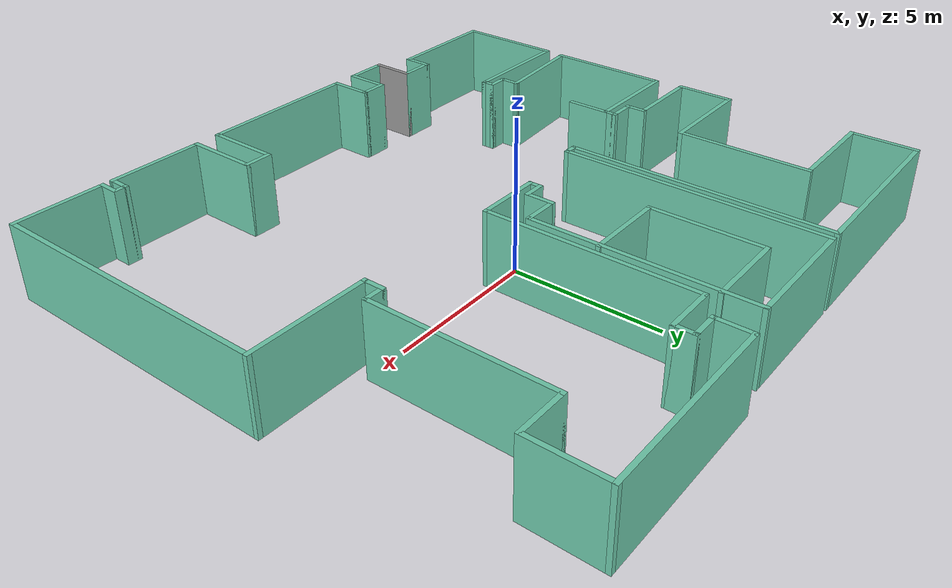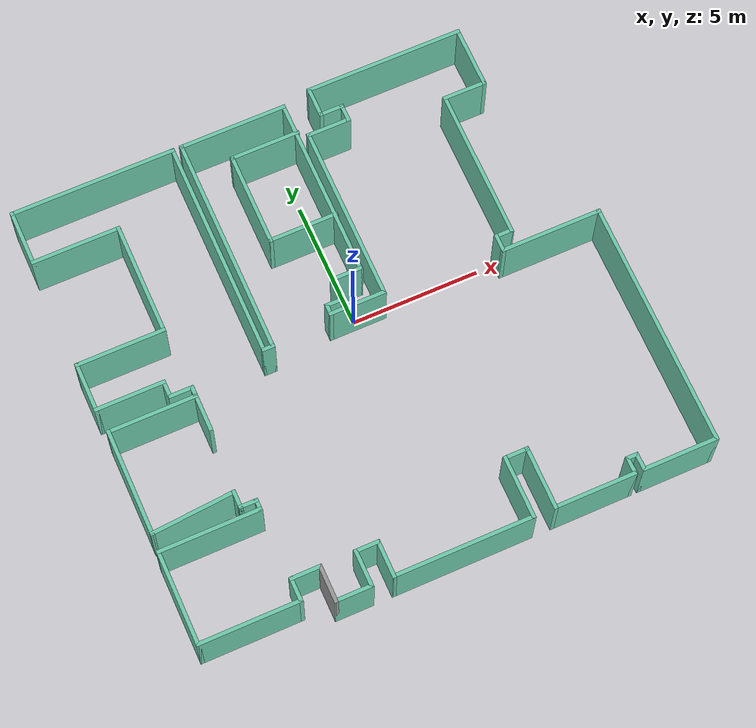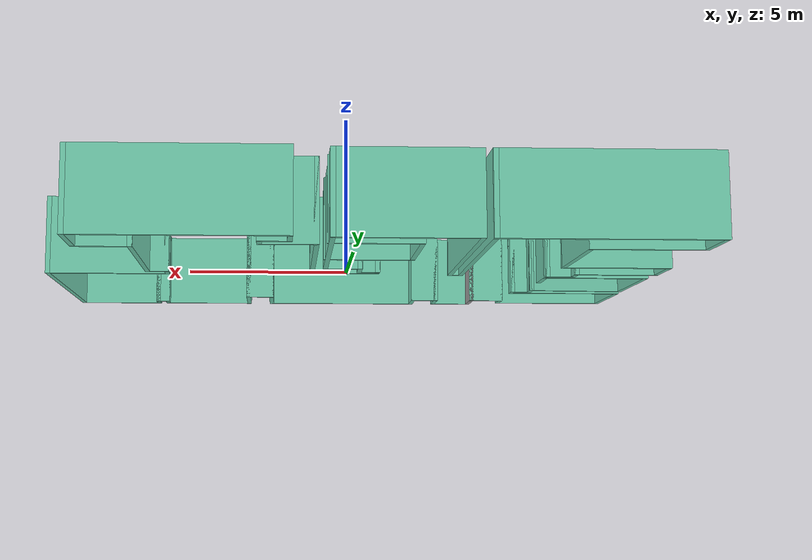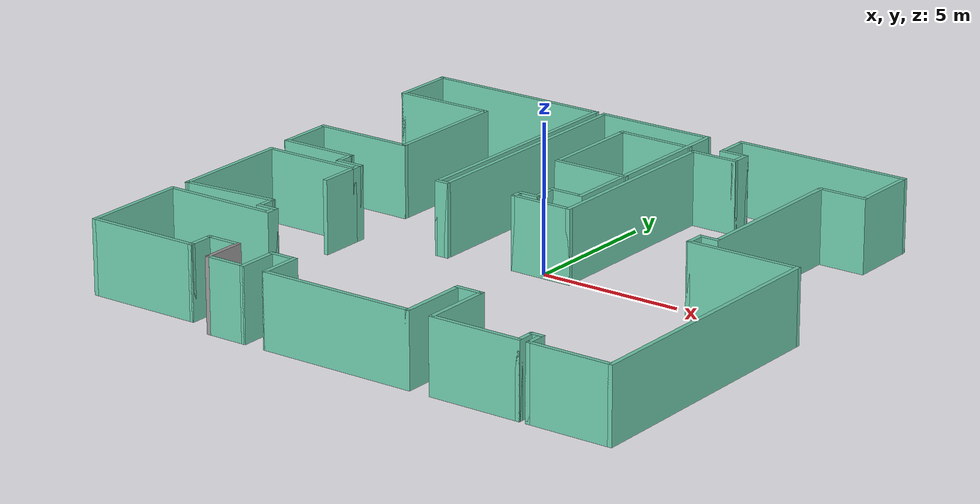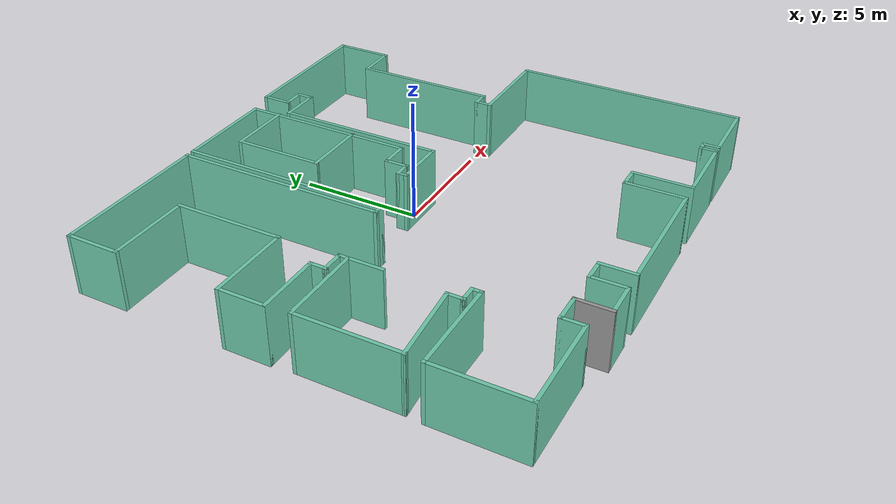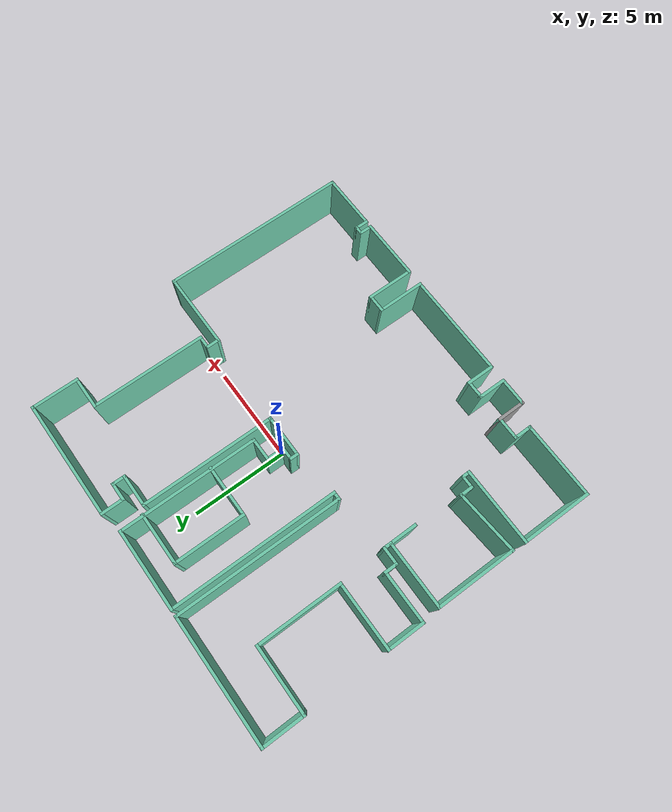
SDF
<?xml version='1.0'?>
<sdf version='1.6'>
  <model name='map_116'>
    <pose frame=''>-0.246075 -0.881339 0 0 -0 0</pose>
    <link name='Wall_102'>
      <collision name='Wall_102_Collision'>
        <geometry>
          <box>
            <size>3.5 0.15 2.5</size>
          </box>
        </geometry>
        <pose frame=''>0 0 1.25 0 -0 0</pose>
      </collision>
      <visual name='Wall_102_Visual'>
        <pose frame=''>0 0 1.25 0 -0 0</pose>
        <geometry>
          <box>
            <size>3.5 0.15 2.5</size>
          </box>
        </geometry>
        <material>
          <script>
            <uri>file://media/materials/scripts/gazebo.material</uri>
            <name>Gazebo/Grey</name>
          </script>
          <ambient>0.435294 0.796078 0.67451 1</ambient>
        </material>
        <meta>
          <layer>0</layer>
        </meta>
      </visual>
      <pose frame=''>-8.075 -0.3 0 0 -0 3.14159</pose>
    </link>
    <link name='Wall_104'>
      <collision name='Wall_104_Collision'>
        <geometry>
          <box>
            <size>4.25 0.15 2.5</size>
          </box>
        </geometry>
        <pose frame=''>0 0 1.25 0 -0 0</pose>
      </collision>
      <visual name='Wall_104_Visual'>
        <pose frame=''>0 0 1.25 0 -0 0</pose>
        <geometry>
          <box>
            <size>4.25 0.15 2.5</size>
          </box>
        </geometry>
        <material>
          <script>
            <uri>file://media/materials/scripts/gazebo.material</uri>
            <name>Gazebo/Grey</name>
          </script>
          <ambient>0.435294 0.796078 0.67451 1</ambient>
        </material>
        <meta>
          <layer>0</layer>
        </meta>
      </visual>
      <pose frame=''>-9.75 -2.35 0 0 -0 -1.5708</pose>
    </link>
    <link name='Wall_105'>
      <collision name='Wall_105_Collision'>
        <geometry>
          <box>
            <size>3.35975 0.15 2.5</size>
          </box>
        </geometry>
        <pose frame=''>0 0 1.25 0 -0 0</pose>
      </collision>
      <visual name='Wall_105_Visual'>
        <pose frame=''>0 0 1.25 0 -0 0</pose>
        <geometry>
          <box>
            <size>3.35975 0.15 2.5</size>
          </box>
        </geometry>
        <material>
          <script>
            <uri>file://media/materials/scripts/gazebo.material</uri>
            <name>Gazebo/Grey</name>
          </script>
          <ambient>0.435294 0.796078 0.67451 1</ambient>
        </material>
        <meta>
          <layer>0</layer>
        </meta>
      </visual>
      <pose frame=''>-8.15 -4.275 0 0 -0 0.077967</pose>
    </link>
    <link name='Wall_107'>
      <collision name='Wall_107_Collision'>
        <geometry>
          <box>
            <size>1.5 0.15 2.5</size>
          </box>
        </geometry>
        <pose frame=''>0 0 1.25 0 -0 0</pose>
      </collision>
      <visual name='Wall_107_Visual'>
        <pose frame=''>0 0 1.25 0 -0 0</pose>
        <geometry>
          <box>
            <size>1.5 0.15 2.5</size>
          </box>
        </geometry>
        <material>
          <script>
            <uri>file://media/materials/scripts/gazebo.material</uri>
            <name>Gazebo/Grey</name>
          </script>
          <ambient>0.435294 0.796078 0.67451 1</ambient>
        </material>
        <meta>
          <layer>0</layer>
        </meta>
      </visual>
      <pose frame=''>-6.4 -0.975 0 0 -0 -1.5708</pose>
    </link>
    <link name='Wall_109'>
      <collision name='Wall_109_Collision'>
        <geometry>
          <box>
            <size>2.75 0.15 2.5</size>
          </box>
        </geometry>
        <pose frame=''>0 0 1.25 0 -0 0</pose>
      </collision>
      <visual name='Wall_109_Visual'>
        <pose frame=''>0 0 1.25 0 -0 0</pose>
        <geometry>
          <box>
            <size>2.75 0.15 2.5</size>
          </box>
        </geometry>
        <material>
          <script>
            <uri>file://media/materials/scripts/gazebo.material</uri>
            <name>Gazebo/Grey</name>
          </script>
          <ambient>0.435294 0.796078 0.67451 1</ambient>
        </material>
        <meta>
          <layer>0</layer>
        </meta>
      </visual>
      <pose frame=''>-0.30531 7.77428 0 0 -0 3.14159</pose>
    </link>
    <link name='Wall_110'>
      <collision name='Wall_110_Collision'>
        <geometry>
          <box>
            <size>3.75 0.15 2.5</size>
          </box>
        </geometry>
        <pose frame=''>0 0 1.25 0 -0 0</pose>
      </collision>
      <visual name='Wall_110_Visual'>
        <pose frame=''>0 0 1.25 0 -0 0</pose>
        <geometry>
          <box>
            <size>3.75 0.15 2.5</size>
          </box>
        </geometry>
        <material>
          <script>
            <uri>file://media/materials/scripts/gazebo.material</uri>
            <name>Gazebo/Grey</name>
          </script>
          <ambient>0.435294 0.796078 0.67451 1</ambient>
        </material>
        <meta>
          <layer>0</layer>
        </meta>
      </visual>
      <pose frame=''>-1.60531 5.97428 0 0 -0 -1.5708</pose>
    </link>
    <link name='Wall_113'>
      <collision name='Wall_113_Collision'>
        <geometry>
          <box>
            <size>2.75 0.15 2.5</size>
          </box>
        </geometry>
        <pose frame=''>0 0 1.25 0 -0 0</pose>
      </collision>
      <visual name='Wall_113_Visual'>
        <pose frame=''>0 0 1.25 0 -0 0</pose>
        <geometry>
          <box>
            <size>2.75 0.15 2.5</size>
          </box>
        </geometry>
        <material>
          <script>
            <uri>file://media/materials/scripts/gazebo.material</uri>
            <name>Gazebo/Grey</name>
          </script>
          <ambient>0.435294 0.796078 0.67451 1</ambient>
        </material>
        <meta>
          <layer>0</layer>
        </meta>
      </visual>
      <pose frame=''>-0.30531 4.17428 0 0 -0 0</pose>
    </link>
    <link name='Wall_25'>
      <collision name='Wall_25_Collision'>
        <geometry>
          <box>
            <size>0.75 0.15 2.5</size>
          </box>
        </geometry>
        <pose frame=''>0 0 1.25 0 -0 0</pose>
      </collision>
      <visual name='Wall_25_Visual'>
        <pose frame=''>0 0 1.25 0 -0 0</pose>
        <geometry>
          <box>
            <size>0.75 0.15 2.5</size>
          </box>
        </geometry>
        <material>
          <script>
            <uri>file://media/materials/scripts/gazebo.material</uri>
            <name>Gazebo/Grey</name>
          </script>
          <ambient>0.435294 0.796078 0.67451 1</ambient>
        </material>
        <meta>
          <layer>0</layer>
        </meta>
      </visual>
      <pose frame=''>-6.55 -4.45 0 0 -0 -1.5708</pose>
    </link>
    <link name='Wall_26'>
      <collision name='Wall_26_Collision'>
        <geometry>
          <box>
            <size>0.75 0.15 2.5</size>
          </box>
        </geometry>
        <pose frame=''>0 0 1.25 0 -0 0</pose>
      </collision>
      <visual name='Wall_26_Visual'>
        <pose frame=''>0 0 1.25 0 -0 0</pose>
        <geometry>
          <box>
            <size>0.75 0.15 2.5</size>
          </box>
        </geometry>
        <material>
          <script>
            <uri>file://media/materials/scripts/gazebo.material</uri>
            <name>Gazebo/Grey</name>
          </script>
          <ambient>0.435294 0.796078 0.67451 1</ambient>
        </material>
        <meta>
          <layer>0</layer>
        </meta>
      </visual>
      <pose frame=''>-6.25 -4.75 0 0 -0 0</pose>
    </link>
    <link name='Wall_27'>
      <collision name='Wall_27_Collision'>
        <geometry>
          <box>
            <size>0.5 0.15 2.5</size>
          </box>
        </geometry>
        <pose frame=''>0 0 1.25 0 -0 0</pose>
      </collision>
      <visual name='Wall_27_Visual'>
        <pose frame=''>0 0 1.25 0 -0 0</pose>
        <geometry>
          <box>
            <size>0.5 0.15 2.5</size>
          </box>
        </geometry>
        <material>
          <script>
            <uri>file://media/materials/scripts/gazebo.material</uri>
            <name>Gazebo/Grey</name>
          </script>
          <ambient>0.435294 0.796078 0.67451 1</ambient>
        </material>
        <meta>
          <layer>0</layer>
        </meta>
      </visual>
      <pose frame=''>-5.95 -4.925 0 0 -0 -1.5708</pose>
    </link>
    <link name='Wall_28'>
      <collision name='Wall_28_Collision'>
        <geometry>
          <box>
            <size>4 0.15 2.5</size>
          </box>
        </geometry>
        <pose frame=''>0 0 1.25 0 -0 0</pose>
      </collision>
      <visual name='Wall_28_Visual'>
        <pose frame=''>0 0 1.25 0 -0 0</pose>
        <geometry>
          <box>
            <size>4 0.15 2.5</size>
          </box>
        </geometry>
        <material>
          <script>
            <uri>file://media/materials/scripts/gazebo.material</uri>
            <name>Gazebo/Grey</name>
          </script>
          <ambient>0.435294 0.796078 0.67451 1</ambient>
        </material>
        <meta>
          <layer>0</layer>
        </meta>
      </visual>
      <pose frame=''>-7.875 -5.1 0 0 -0 3.14159</pose>
    </link>
    <link name='Wall_29'>
      <collision name='Wall_29_Collision'>
        <geometry>
          <box>
            <size>3.75 0.15 2.5</size>
          </box>
        </geometry>
        <pose frame=''>0 0 1.25 0 -0 0</pose>
      </collision>
      <visual name='Wall_29_Visual'>
        <pose frame=''>0 0 1.25 0 -0 0</pose>
        <geometry>
          <box>
            <size>3.75 0.15 2.5</size>
          </box>
        </geometry>
        <material>
          <script>
            <uri>file://media/materials/scripts/gazebo.material</uri>
            <name>Gazebo/Grey</name>
          </script>
          <ambient>0.435294 0.796078 0.67451 1</ambient>
        </material>
        <meta>
          <layer>0</layer>
        </meta>
      </visual>
      <pose frame=''>-9.8 -6.9 0 0 -0 -1.5708</pose>
    </link>
    <link name='Wall_30'>
      <collision name='Wall_30_Collision'>
        <geometry>
          <box>
            <size>4 0.15 2.5</size>
          </box>
        </geometry>
        <pose frame=''>0 0 1.25 0 -0 0</pose>
      </collision>
      <visual name='Wall_30_Visual'>
        <pose frame=''>0 0 1.25 0 -0 0</pose>
        <geometry>
          <box>
            <size>4 0.15 2.5</size>
          </box>
        </geometry>
        <material>
          <script>
            <uri>file://media/materials/scripts/gazebo.material</uri>
            <name>Gazebo/Grey</name>
          </script>
          <ambient>0.435294 0.796078 0.67451 1</ambient>
        </material>
        <meta>
          <layer>0</layer>
        </meta>
      </visual>
      <pose frame=''>-7.875 -8.7 0 0 -0 0</pose>
    </link>
    <link name='Wall_31'>
      <collision name='Wall_31_Collision'>
        <geometry>
          <box>
            <size>1 0.15 2.5</size>
          </box>
        </geometry>
        <pose frame=''>0 0 1.25 0 -0 0</pose>
      </collision>
      <visual name='Wall_31_Visual'>
        <pose frame=''>0 0 1.25 0 -0 0</pose>
        <geometry>
          <box>
            <size>1 0.15 2.5</size>
          </box>
        </geometry>
        <material>
          <script>
            <uri>file://media/materials/scripts/gazebo.material</uri>
            <name>Gazebo/Grey</name>
          </script>
          <ambient>0.435294 0.796078 0.67451 1</ambient>
        </material>
        <meta>
          <layer>0</layer>
        </meta>
      </visual>
      <pose frame=''>-5.95 -8.275 0 0 -0 1.5708</pose>
    </link>
    <link name='Wall_32'>
      <collision name='Wall_32_Collision'>
        <geometry>
          <box>
            <size>1.25 0.15 2.5</size>
          </box>
        </geometry>
        <pose frame=''>0 0 1.25 0 -0 0</pose>
      </collision>
      <visual name='Wall_32_Visual'>
        <pose frame=''>0 0 1.25 0 -0 0</pose>
        <geometry>
          <box>
            <size>1.25 0.15 2.5</size>
          </box>
        </geometry>
        <material>
          <script>
            <uri>file://media/materials/scripts/gazebo.material</uri>
            <name>Gazebo/Grey</name>
          </script>
          <ambient>0.435294 0.796078 0.67451 1</ambient>
        </material>
        <meta>
          <layer>0</layer>
        </meta>
      </visual>
      <pose frame=''>-5.4 -7.85 0 0 -0 0</pose>
    </link>
    <link name='Wall_33'>
      <collision name='Wall_33_Collision'>
        <geometry>
          <box>
            <size>1.5 0.15 2.5</size>
          </box>
        </geometry>
        <pose frame=''>0 0 1.25 0 -0 0</pose>
      </collision>
      <visual name='Wall_33_Visual'>
        <pose frame=''>0 0 1.25 0 -0 0</pose>
        <geometry>
          <box>
            <size>1.5 0.15 2.5</size>
          </box>
        </geometry>
        <material>
          <script>
            <uri>file://media/materials/scripts/gazebo.material</uri>
            <name>Gazebo/Grey</name>
          </script>
          <ambient>1 1 1 1</ambient>
        </material>
        <meta>
          <layer>0</layer>
        </meta>
      </visual>
      <pose frame=''>-4.85 -8.525 0 0 -0 -1.5708</pose>
    </link>
    <link name='Wall_34'>
      <collision name='Wall_34_Collision'>
        <geometry>
          <box>
            <size>1.5 0.15 2.5</size>
          </box>
        </geometry>
        <pose frame=''>0 0 1.25 0 -0 0</pose>
      </collision>
      <visual name='Wall_34_Visual'>
        <pose frame=''>0 0 1.25 0 -0 0</pose>
        <geometry>
          <box>
            <size>1.5 0.15 2.5</size>
          </box>
        </geometry>
        <material>
          <script>
            <uri>file://media/materials/scripts/gazebo.material</uri>
            <name>Gazebo/Grey</name>
          </script>
          <ambient>0.435294 0.796078 0.67451 1</ambient>
        </material>
        <meta>
          <layer>0</layer>
        </meta>
      </visual>
      <pose frame=''>-4.175 -9.2 0 0 -0 0</pose>
    </link>
    <link name='Wall_35'>
      <collision name='Wall_35_Collision'>
        <geometry>
          <box>
            <size>1.5 0.15 2.5</size>
          </box>
        </geometry>
        <pose frame=''>0 0 1.25 0 -0 0</pose>
      </collision>
      <visual name='Wall_35_Visual'>
        <pose frame=''>0 0 1.25 0 -0 0</pose>
        <geometry>
          <box>
            <size>1.5 0.15 2.5</size>
          </box>
        </geometry>
        <material>
          <script>
            <uri>file://media/materials/scripts/gazebo.material</uri>
            <name>Gazebo/Grey</name>
          </script>
          <ambient>0.435294 0.796078 0.67451 1</ambient>
        </material>
        <meta>
          <layer>0</layer>
        </meta>
      </visual>
      <pose frame=''>-3.5 -8.525 0 0 -0 1.5708</pose>
    </link>
    <link name='Wall_36'>
      <collision name='Wall_36_Collision'>
        <geometry>
          <box>
            <size>1 0.15 2.5</size>
          </box>
        </geometry>
        <pose frame=''>0 0 1.25 0 -0 0</pose>
      </collision>
      <visual name='Wall_36_Visual'>
        <pose frame=''>0 0 1.25 0 -0 0</pose>
        <geometry>
          <box>
            <size>1 0.15 2.5</size>
          </box>
        </geometry>
        <material>
          <script>
            <uri>file://media/materials/scripts/gazebo.material</uri>
            <name>Gazebo/Grey</name>
          </script>
          <ambient>0.435294 0.796078 0.67451 1</ambient>
        </material>
        <meta>
          <layer>0</layer>
        </meta>
      </visual>
      <pose frame=''>-3.075 -7.85 0 0 -0 0</pose>
    </link>
    <link name='Wall_37'>
      <collision name='Wall_37_Collision'>
        <geometry>
          <box>
            <size>1.5 0.15 2.5</size>
          </box>
        </geometry>
        <pose frame=''>0 0 1.25 0 -0 0</pose>
      </collision>
      <visual name='Wall_37_Visual'>
        <pose frame=''>0 0 1.25 0 -0 0</pose>
        <geometry>
          <box>
            <size>1.5 0.15 2.5</size>
          </box>
        </geometry>
        <material>
          <script>
            <uri>file://media/materials/scripts/gazebo.material</uri>
            <name>Gazebo/Grey</name>
          </script>
          <ambient>0.435294 0.796078 0.67451 1</ambient>
        </material>
        <meta>
          <layer>0</layer>
        </meta>
      </visual>
      <pose frame=''>-2.65 -8.525 0 0 -0 -1.5708</pose>
    </link>
    <link name='Wall_38'>
      <collision name='Wall_38_Collision'>
        <geometry>
          <box>
            <size>5.5 0.15 2.5</size>
          </box>
        </geometry>
        <pose frame=''>0 0 1.25 0 -0 0</pose>
      </collision>
      <visual name='Wall_38_Visual'>
        <pose frame=''>0 0 1.25 0 -0 0</pose>
        <geometry>
          <box>
            <size>5.5 0.15 2.5</size>
          </box>
        </geometry>
        <material>
          <script>
            <uri>file://media/materials/scripts/gazebo.material</uri>
            <name>Gazebo/Grey</name>
          </script>
          <ambient>0.435294 0.796078 0.67451 1</ambient>
        </material>
        <meta>
          <layer>0</layer>
        </meta>
      </visual>
      <pose frame=''>0.025 -9.2 0 0 -0 0</pose>
    </link>
    <link name='Wall_39'>
      <collision name='Wall_39_Collision'>
        <geometry>
          <box>
            <size>2.5 0.15 2.5</size>
          </box>
        </geometry>
        <pose frame=''>0 0 1.25 0 -0 0</pose>
      </collision>
      <visual name='Wall_39_Visual'>
        <pose frame=''>0 0 1.25 0 -0 0</pose>
        <geometry>
          <box>
            <size>2.5 0.15 2.5</size>
          </box>
        </geometry>
        <material>
          <script>
            <uri>file://media/materials/scripts/gazebo.material</uri>
            <name>Gazebo/Grey</name>
          </script>
          <ambient>0.435294 0.796078 0.67451 1</ambient>
        </material>
        <meta>
          <layer>0</layer>
        </meta>
      </visual>
      <pose frame=''>2.7 -8.025 0 0 -0 1.5708</pose>
    </link>
    <link name='Wall_40'>
      <collision name='Wall_40_Collision'>
        <geometry>
          <box>
            <size>1 0.15 2.5</size>
          </box>
        </geometry>
        <pose frame=''>0 0 1.25 0 -0 0</pose>
      </collision>
      <visual name='Wall_40_Visual'>
        <pose frame=''>0 0 1.25 0 -0 0</pose>
        <geometry>
          <box>
            <size>1 0.15 2.5</size>
          </box>
        </geometry>
        <material>
          <script>
            <uri>file://media/materials/scripts/gazebo.material</uri>
            <name>Gazebo/Grey</name>
          </script>
          <ambient>0.435294 0.796078 0.67451 1</ambient>
        </material>
        <meta>
          <layer>0</layer>
        </meta>
      </visual>
      <pose frame=''>3.125 -6.85 0 0 -0 0</pose>
    </link>
    <link name='Wall_41'>
      <collision name='Wall_41_Collision'>
        <geometry>
          <box>
            <size>2.5 0.15 2.5</size>
          </box>
        </geometry>
        <pose frame=''>0 0 1.25 0 -0 0</pose>
      </collision>
      <visual name='Wall_41_Visual'>
        <pose frame=''>0 0 1.25 0 -0 0</pose>
        <geometry>
          <box>
            <size>2.5 0.15 2.5</size>
          </box>
        </geometry>
        <material>
          <script>
            <uri>file://media/materials/scripts/gazebo.material</uri>
            <name>Gazebo/Grey</name>
          </script>
          <ambient>0.435294 0.796078 0.67451 1</ambient>
        </material>
        <meta>
          <layer>0</layer>
        </meta>
      </visual>
      <pose frame=''>3.55 -8.025 0 0 -0 -1.5708</pose>
    </link>
    <link name='Wall_42'>
      <collision name='Wall_42_Collision'>
        <geometry>
          <box>
            <size>3.25 0.15 2.5</size>
          </box>
        </geometry>
        <pose frame=''>0 0 1.25 0 -0 0</pose>
      </collision>
      <visual name='Wall_42_Visual'>
        <pose frame=''>0 0 1.25 0 -0 0</pose>
        <geometry>
          <box>
            <size>3.25 0.15 2.5</size>
          </box>
        </geometry>
        <material>
          <script>
            <uri>file://media/materials/scripts/gazebo.material</uri>
            <name>Gazebo/Grey</name>
          </script>
          <ambient>0.435294 0.796078 0.67451 1</ambient>
        </material>
        <meta>
          <layer>0</layer>
        </meta>
      </visual>
      <pose frame=''>5.1 -9.2 0 0 -0 0</pose>
    </link>
    <link name='Wall_43'>
      <collision name='Wall_43_Collision'>
        <geometry>
          <box>
            <size>0.75 0.15 2.5</size>
          </box>
        </geometry>
        <pose frame=''>0 0 1.25 0 -0 0</pose>
      </collision>
      <visual name='Wall_43_Visual'>
        <pose frame=''>0 0 1.25 0 -0 0</pose>
        <geometry>
          <box>
            <size>0.75 0.15 2.5</size>
          </box>
        </geometry>
        <material>
          <script>
            <uri>file://media/materials/scripts/gazebo.material</uri>
            <name>Gazebo/Grey</name>
          </script>
          <ambient>0.435294 0.796078 0.67451 1</ambient>
        </material>
        <meta>
          <layer>0</layer>
        </meta>
      </visual>
      <pose frame=''>6.65 -8.9 0 0 -0 1.5708</pose>
    </link>
    <link name='Wall_44'>
      <collision name='Wall_44_Collision'>
        <geometry>
          <box>
            <size>0.5 0.15 2.5</size>
          </box>
        </geometry>
        <pose frame=''>0 0 1.25 0 -0 0</pose>
      </collision>
      <visual name='Wall_44_Visual'>
        <pose frame=''>0 0 1.25 0 -0 0</pose>
        <geometry>
          <box>
            <size>0.5 0.15 2.5</size>
          </box>
        </geometry>
        <material>
          <script>
            <uri>file://media/materials/scripts/gazebo.material</uri>
            <name>Gazebo/Grey</name>
          </script>
          <ambient>0.435294 0.796078 0.67451 1</ambient>
        </material>
        <meta>
          <layer>0</layer>
        </meta>
      </visual>
      <pose frame=''>6.825 -8.6 0 0 -0 0</pose>
    </link>
    <link name='Wall_45'>
      <collision name='Wall_45_Collision'>
        <geometry>
          <box>
            <size>0.75 0.15 2.5</size>
          </box>
        </geometry>
        <pose frame=''>0 0 1.25 0 -0 0</pose>
      </collision>
      <visual name='Wall_45_Visual'>
        <pose frame=''>0 0 1.25 0 -0 0</pose>
        <geometry>
          <box>
            <size>0.75 0.15 2.5</size>
          </box>
        </geometry>
        <material>
          <script>
            <uri>file://media/materials/scripts/gazebo.material</uri>
            <name>Gazebo/Grey</name>
          </script>
          <ambient>0.435294 0.796078 0.67451 1</ambient>
        </material>
        <meta>
          <layer>0</layer>
        </meta>
      </visual>
      <pose frame=''>7 -8.9 0 0 -0 -1.5708</pose>
    </link>
    <link name='Wall_46'>
      <collision name='Wall_46_Collision'>
        <geometry>
          <box>
            <size>3 0.15 2.5</size>
          </box>
        </geometry>
        <pose frame=''>0 0 1.25 0 -0 0</pose>
      </collision>
      <visual name='Wall_46_Visual'>
        <pose frame=''>0 0 1.25 0 -0 0</pose>
        <geometry>
          <box>
            <size>3 0.15 2.5</size>
          </box>
        </geometry>
        <material>
          <script>
            <uri>file://media/materials/scripts/gazebo.material</uri>
            <name>Gazebo/Grey</name>
          </script>
          <ambient>0.435294 0.796078 0.67451 1</ambient>
        </material>
        <meta>
          <layer>0</layer>
        </meta>
      </visual>
      <pose frame=''>8.425 -9.2 0 0 -0 0</pose>
    </link>
    <link name='Wall_47'>
      <collision name='Wall_47_Collision'>
        <geometry>
          <box>
            <size>9.75 0.15 2.5</size>
          </box>
        </geometry>
        <pose frame=''>0 0 1.25 0 -0 0</pose>
      </collision>
      <visual name='Wall_47_Visual'>
        <pose frame=''>0 0 1.25 0 -0 0</pose>
        <geometry>
          <box>
            <size>9.75 0.15 2.5</size>
          </box>
        </geometry>
        <material>
          <script>
            <uri>file://media/materials/scripts/gazebo.material</uri>
            <name>Gazebo/Grey</name>
          </script>
          <ambient>0.435294 0.796078 0.67451 1</ambient>
        </material>
        <meta>
          <layer>0</layer>
        </meta>
      </visual>
      <pose frame=''>9.85 -4.4 0 0 -0 1.5708</pose>
    </link>
    <link name='Wall_48'>
      <collision name='Wall_48_Collision'>
        <geometry>
          <box>
            <size>4 0.15 2.5</size>
          </box>
        </geometry>
        <pose frame=''>0 0 1.25 0 -0 0</pose>
      </collision>
      <visual name='Wall_48_Visual'>
        <pose frame=''>0 0 1.25 0 -0 0</pose>
        <geometry>
          <box>
            <size>4 0.15 2.5</size>
          </box>
        </geometry>
        <material>
          <script>
            <uri>file://media/materials/scripts/gazebo.material</uri>
            <name>Gazebo/Grey</name>
          </script>
          <ambient>0.435294 0.796078 0.67451 1</ambient>
        </material>
        <meta>
          <layer>0</layer>
        </meta>
      </visual>
      <pose frame=''>7.925 0.4 0 0 -0 3.14159</pose>
    </link>
    <link name='Wall_49'>
      <collision name='Wall_49_Collision'>
        <geometry>
          <box>
            <size>0.75 0.15 2.5</size>
          </box>
        </geometry>
        <pose frame=''>0 0 1.25 0 -0 0</pose>
      </collision>
      <visual name='Wall_49_Visual'>
        <pose frame=''>0 0 1.25 0 -0 0</pose>
        <geometry>
          <box>
            <size>0.75 0.15 2.5</size>
          </box>
        </geometry>
        <material>
          <script>
            <uri>file://media/materials/scripts/gazebo.material</uri>
            <name>Gazebo/Grey</name>
          </script>
          <ambient>0.435294 0.796078 0.67451 1</ambient>
        </material>
        <meta>
          <layer>0</layer>
        </meta>
      </visual>
      <pose frame=''>6 0.7 0 0 -0 1.5708</pose>
    </link>
    <link name='Wall_50'>
      <collision name='Wall_50_Collision'>
        <geometry>
          <box>
            <size>0.75 0.15 2.5</size>
          </box>
        </geometry>
        <pose frame=''>0 0 1.25 0 -0 0</pose>
      </collision>
      <visual name='Wall_50_Visual'>
        <pose frame=''>0 0 1.25 0 -0 0</pose>
        <geometry>
          <box>
            <size>0.75 0.15 2.5</size>
          </box>
        </geometry>
        <material>
          <script>
            <uri>file://media/materials/scripts/gazebo.material</uri>
            <name>Gazebo/Grey</name>
          </script>
          <ambient>0.435294 0.796078 0.67451 1</ambient>
        </material>
        <meta>
          <layer>0</layer>
        </meta>
      </visual>
      <pose frame=''>6.3 1 0 0 -0 0</pose>
    </link>
    <link name='Wall_51'>
      <collision name='Wall_51_Collision'>
        <geometry>
          <box>
            <size>6 0.15 2.5</size>
          </box>
        </geometry>
        <pose frame=''>0 0 1.25 0 -0 0</pose>
      </collision>
      <visual name='Wall_51_Visual'>
        <pose frame=''>0 0 1.25 0 -0 0</pose>
        <geometry>
          <box>
            <size>6 0.15 2.5</size>
          </box>
        </geometry>
        <material>
          <script>
            <uri>file://media/materials/scripts/gazebo.material</uri>
            <name>Gazebo/Grey</name>
          </script>
          <ambient>0.435294 0.796078 0.67451 1</ambient>
        </material>
        <meta>
          <layer>0</layer>
        </meta>
      </visual>
      <pose frame=''>6.6 3.925 0 0 -0 1.5708</pose>
    </link>
    <link name='Wall_52'>
      <collision name='Wall_52_Collision'>
        <geometry>
          <box>
            <size>1.75 0.15 2.5</size>
          </box>
        </geometry>
        <pose frame=''>0 0 1.25 0 -0 0</pose>
      </collision>
      <visual name='Wall_52_Visual'>
        <pose frame=''>0 0 1.25 0 -0 0</pose>
        <geometry>
          <box>
            <size>1.75 0.15 2.5</size>
          </box>
        </geometry>
        <material>
          <script>
            <uri>file://media/materials/scripts/gazebo.material</uri>
            <name>Gazebo/Grey</name>
          </script>
          <ambient>0.435294 0.796078 0.67451 1</ambient>
        </material>
        <meta>
          <layer>0</layer>
        </meta>
      </visual>
      <pose frame=''>7.4 6.85 0 0 -0 0</pose>
    </link>
    <link name='Wall_53'>
      <collision name='Wall_53_Collision'>
        <geometry>
          <box>
            <size>2.5 0.15 2.5</size>
          </box>
        </geometry>
        <pose frame=''>0 0 1.25 0 -0 0</pose>
      </collision>
      <visual name='Wall_53_Visual'>
        <pose frame=''>0 0 1.25 0 -0 0</pose>
        <geometry>
          <box>
            <size>2.5 0.15 2.5</size>
          </box>
        </geometry>
        <material>
          <script>
            <uri>file://media/materials/scripts/gazebo.material</uri>
            <name>Gazebo/Grey</name>
          </script>
          <ambient>0.435294 0.796078 0.67451 1</ambient>
        </material>
        <meta>
          <layer>0</layer>
        </meta>
      </visual>
      <pose frame=''>8.2 8.025 0 0 -0 1.5708</pose>
    </link>
    <link name='Wall_54'>
      <collision name='Wall_54_Collision'>
        <geometry>
          <box>
            <size>6.25 0.15 2.5</size>
          </box>
        </geometry>
        <pose frame=''>0 0 1.25 0 -0 0</pose>
      </collision>
      <visual name='Wall_54_Visual'>
        <pose frame=''>0 0 1.25 0 -0 0</pose>
        <geometry>
          <box>
            <size>6.25 0.15 2.5</size>
          </box>
        </geometry>
        <material>
          <script>
            <uri>file://media/materials/scripts/gazebo.material</uri>
            <name>Gazebo/Grey</name>
          </script>
          <ambient>0.435294 0.796078 0.67451 1</ambient>
        </material>
        <meta>
          <layer>0</layer>
        </meta>
      </visual>
      <pose frame=''>5.15 9.2 0 0 -0 3.14159</pose>
    </link>
    <link name='Wall_55'>
      <collision name='Wall_55_Collision'>
        <geometry>
          <box>
            <size>1.25 0.15 2.5</size>
          </box>
        </geometry>
        <pose frame=''>0 0 1.25 0 -0 0</pose>
      </collision>
      <visual name='Wall_55_Visual'>
        <pose frame=''>0 0 1.25 0 -0 0</pose>
        <geometry>
          <box>
            <size>1.25 0.15 2.5</size>
          </box>
        </geometry>
        <material>
          <script>
            <uri>file://media/materials/scripts/gazebo.material</uri>
            <name>Gazebo/Grey</name>
          </script>
          <ambient>0.435294 0.796078 0.67451 1</ambient>
        </material>
        <meta>
          <layer>0</layer>
        </meta>
      </visual>
      <pose frame=''>2.1 8.65 0 0 -0 -1.5708</pose>
    </link>
    <link name='Wall_56'>
      <collision name='Wall_56_Collision'>
        <geometry>
          <box>
            <size>1 0.15 2.5</size>
          </box>
        </geometry>
        <pose frame=''>0 0 1.25 0 -0 0</pose>
      </collision>
      <visual name='Wall_56_Visual'>
        <pose frame=''>0 0 1.25 0 -0 0</pose>
        <geometry>
          <box>
            <size>1 0.15 2.5</size>
          </box>
        </geometry>
        <material>
          <script>
            <uri>file://media/materials/scripts/gazebo.material</uri>
            <name>Gazebo/Grey</name>
          </script>
          <ambient>0.435294 0.796078 0.67451 1</ambient>
        </material>
        <meta>
          <layer>0</layer>
        </meta>
      </visual>
      <pose frame=''>2.525 8.1 0 0 -0 0</pose>
    </link>
    <link name='Wall_57'>
      <collision name='Wall_57_Collision'>
        <geometry>
          <box>
            <size>0.75 0.15 2.5</size>
          </box>
        </geometry>
        <pose frame=''>0 0 1.25 0 -0 0</pose>
      </collision>
      <visual name='Wall_57_Visual'>
        <pose frame=''>0 0 1.25 0 -0 0</pose>
        <geometry>
          <box>
            <size>0.75 0.15 2.5</size>
          </box>
        </geometry>
        <material>
          <script>
            <uri>file://media/materials/scripts/gazebo.material</uri>
            <name>Gazebo/Grey</name>
          </script>
          <ambient>0.435294 0.796078 0.67451 1</ambient>
        </material>
        <meta>
          <layer>0</layer>
        </meta>
      </visual>
      <pose frame=''>2.95 7.8 0 0 -0 -1.5708</pose>
    </link>
    <link name='Wall_58'>
      <collision name='Wall_58_Collision'>
        <geometry>
          <box>
            <size>1.75 0.15 2.5</size>
          </box>
        </geometry>
        <pose frame=''>0 0 1.25 0 -0 0</pose>
      </collision>
      <visual name='Wall_58_Visual'>
        <pose frame=''>0 0 1.25 0 -0 0</pose>
        <geometry>
          <box>
            <size>1.75 0.15 2.5</size>
          </box>
        </geometry>
        <material>
          <script>
            <uri>file://media/materials/scripts/gazebo.material</uri>
            <name>Gazebo/Grey</name>
          </script>
          <ambient>0.435294 0.796078 0.67451 1</ambient>
        </material>
        <meta>
          <layer>0</layer>
        </meta>
      </visual>
      <pose frame=''>2.15 7.5 0 0 -0 3.14159</pose>
    </link>
    <link name='Wall_63'>
      <collision name='Wall_63_Collision'>
        <geometry>
          <box>
            <size>1 0.15 2.5</size>
          </box>
        </geometry>
        <pose frame=''>0 0 1.25 0 -0 0</pose>
      </collision>
      <visual name='Wall_63_Visual'>
        <pose frame=''>0 0 1.25 0 -0 0</pose>
        <geometry>
          <box>
            <size>1 0.15 2.5</size>
          </box>
        </geometry>
        <material>
          <script>
            <uri>file://media/materials/scripts/gazebo.material</uri>
            <name>Gazebo/Grey</name>
          </script>
          <ambient>0.435294 0.796078 0.67451 1</ambient>
        </material>
        <meta>
          <layer>0</layer>
        </meta>
      </visual>
      <pose frame=''>-0.15 1.425 0 0 -0 1.5708</pose>
    </link>
    <link name='Wall_64'>
      <collision name='Wall_64_Collision'>
        <geometry>
          <box>
            <size>1.25 0.15 2.5</size>
          </box>
        </geometry>
        <pose frame=''>0 0 1.25 0 -0 0</pose>
      </collision>
      <visual name='Wall_64_Visual'>
        <pose frame=''>0 0 1.25 0 -0 0</pose>
        <geometry>
          <box>
            <size>1.25 0.15 2.5</size>
          </box>
        </geometry>
        <material>
          <script>
            <uri>file://media/materials/scripts/gazebo.material</uri>
            <name>Gazebo/Grey</name>
          </script>
          <ambient>0.435294 0.796078 0.67451 1</ambient>
        </material>
        <meta>
          <layer>0</layer>
        </meta>
      </visual>
      <pose frame=''>0.4 1.85 0 0 -0 0</pose>
    </link>
    <link name='Wall_65'>
      <collision name='Wall_65_Collision'>
        <geometry>
          <box>
            <size>7.25 0.15 2.5</size>
          </box>
        </geometry>
        <pose frame=''>0 0 1.25 0 -0 0</pose>
      </collision>
      <visual name='Wall_65_Visual'>
        <pose frame=''>0 0 1.25 0 -0 0</pose>
        <geometry>
          <box>
            <size>7.25 0.15 2.5</size>
          </box>
        </geometry>
        <material>
          <script>
            <uri>file://media/materials/scripts/gazebo.material</uri>
            <name>Gazebo/Grey</name>
          </script>
          <ambient>0.435294 0.796078 0.67451 1</ambient>
        </material>
        <meta>
          <layer>0</layer>
        </meta>
      </visual>
      <pose frame=''>0.95 5.4 0 0 -0 1.5708</pose>
    </link>
    <link name='Wall_70'>
      <collision name='Wall_70_Collision'>
        <geometry>
          <box>
            <size>4.25 0.15 2.5</size>
          </box>
        </geometry>
        <pose frame=''>0 0 1.25 0 -0 0</pose>
      </collision>
      <visual name='Wall_70_Visual'>
        <pose frame=''>0 0 1.25 0 -0 0</pose>
        <geometry>
          <box>
            <size>4.25 0.15 2.5</size>
          </box>
        </geometry>
        <material>
          <script>
            <uri>file://media/materials/scripts/gazebo.material</uri>
            <name>Gazebo/Grey</name>
          </script>
          <ambient>0.435294 0.796078 0.67451 1</ambient>
        </material>
        <meta>
          <layer>0</layer>
        </meta>
      </visual>
      <pose frame=''>-1.1 8.95 0 0 -0 3.14159</pose>
    </link>
    <link name='Wall_71'>
      <collision name='Wall_71_Collision'>
        <geometry>
          <box>
            <size>8.75 0.15 2.5</size>
          </box>
        </geometry>
        <pose frame=''>0 0 1.25 0 -0 0</pose>
      </collision>
      <visual name='Wall_71_Visual'>
        <pose frame=''>0 0 1.25 0 -0 0</pose>
        <geometry>
          <box>
            <size>8.75 0.15 2.5</size>
          </box>
        </geometry>
        <material>
          <script>
            <uri>file://media/materials/scripts/gazebo.material</uri>
            <name>Gazebo/Grey</name>
          </script>
          <ambient>0.435294 0.796078 0.67451 1</ambient>
        </material>
        <meta>
          <layer>0</layer>
        </meta>
      </visual>
      <pose frame=''>-3.15 4.65 0 0 -0 -1.5708</pose>
    </link>
    <link name='Wall_72'>
      <collision name='Wall_72_Collision'>
        <geometry>
          <box>
            <size>0.5 0.15 2.5</size>
          </box>
        </geometry>
        <pose frame=''>0 0 1.25 0 -0 0</pose>
      </collision>
      <visual name='Wall_72_Visual'>
        <pose frame=''>0 0 1.25 0 -0 0</pose>
        <geometry>
          <box>
            <size>0.5 0.15 2.5</size>
          </box>
        </geometry>
        <material>
          <script>
            <uri>file://media/materials/scripts/gazebo.material</uri>
            <name>Gazebo/Grey</name>
          </script>
          <ambient>0.435294 0.796078 0.67451 1</ambient>
        </material>
        <meta>
          <layer>0</layer>
        </meta>
      </visual>
      <pose frame=''>-3.325 0.35 0 0 -0 3.14159</pose>
    </link>
    <link name='Wall_73'>
      <collision name='Wall_73_Collision'>
        <geometry>
          <box>
            <size>8.75 0.15 2.5</size>
          </box>
        </geometry>
        <pose frame=''>0 0 1.25 0 -0 0</pose>
      </collision>
      <visual name='Wall_73_Visual'>
        <pose frame=''>0 0 1.25 0 -0 0</pose>
        <geometry>
          <box>
            <size>8.75 0.15 2.5</size>
          </box>
        </geometry>
        <material>
          <script>
            <uri>file://media/materials/scripts/gazebo.material</uri>
            <name>Gazebo/Grey</name>
          </script>
          <ambient>0.435294 0.796078 0.67451 1</ambient>
        </material>
        <meta>
          <layer>0</layer>
        </meta>
      </visual>
      <pose frame=''>-3.5 4.65 0 0 -0 1.5708</pose>
    </link>
    <link name='Wall_77'>
      <collision name='Wall_77_Collision'>
        <geometry>
          <box>
            <size>7 0.15 2.5</size>
          </box>
        </geometry>
        <pose frame=''>0 0 1.25 0 -0 0</pose>
      </collision>
      <visual name='Wall_77_Visual'>
        <pose frame=''>0 0 1.25 0 -0 0</pose>
        <geometry>
          <box>
            <size>7 0.15 2.5</size>
          </box>
        </geometry>
        <material>
          <script>
            <uri>file://media/materials/scripts/gazebo.material</uri>
            <name>Gazebo/Grey</name>
          </script>
          <ambient>0.435294 0.796078 0.67451 1</ambient>
        </material>
        <meta>
          <layer>0</layer>
        </meta>
      </visual>
      <pose frame=''>1.35 4.075 0 0 -0 -1.5708</pose>
    </link>
    <link name='Wall_78'>
      <collision name='Wall_78_Collision'>
        <geometry>
          <box>
            <size>2.25 0.15 2.5</size>
          </box>
        </geometry>
        <pose frame=''>0 0 1.25 0 -0 0</pose>
      </collision>
      <visual name='Wall_78_Visual'>
        <pose frame=''>0 0 1.25 0 -0 0</pose>
        <geometry>
          <box>
            <size>2.25 0.15 2.5</size>
          </box>
        </geometry>
        <material>
          <script>
            <uri>file://media/materials/scripts/gazebo.material</uri>
            <name>Gazebo/Grey</name>
          </script>
          <ambient>0.435294 0.796078 0.67451 1</ambient>
        </material>
        <meta>
          <layer>0</layer>
        </meta>
      </visual>
      <pose frame=''>0.3 0.65 0 0 -0 3.14159</pose>
    </link>
    <link name='Wall_79'>
      <collision name='Wall_79_Collision'>
        <geometry>
          <box>
            <size>0.5 0.15 2.5</size>
          </box>
        </geometry>
        <pose frame=''>0 0 1.25 0 -0 0</pose>
      </collision>
      <visual name='Wall_79_Visual'>
        <pose frame=''>0 0 1.25 0 -0 0</pose>
        <geometry>
          <box>
            <size>0.5 0.15 2.5</size>
          </box>
        </geometry>
        <material>
          <script>
            <uri>file://media/materials/scripts/gazebo.material</uri>
            <name>Gazebo/Grey</name>
          </script>
          <ambient>0.435294 0.796078 0.67451 1</ambient>
        </material>
        <meta>
          <layer>0</layer>
        </meta>
      </visual>
      <pose frame=''>-0.75 0.825 0 0 -0 1.5708</pose>
    </link>
    <link name='Wall_80'>
      <collision name='Wall_80_Collision'>
        <geometry>
          <box>
            <size>0.75 0.15 2.5</size>
          </box>
        </geometry>
        <pose frame=''>0 0 1.25 0 -0 0</pose>
      </collision>
      <visual name='Wall_80_Visual'>
        <pose frame=''>0 0 1.25 0 -0 0</pose>
        <geometry>
          <box>
            <size>0.75 0.15 2.5</size>
          </box>
        </geometry>
        <material>
          <script>
            <uri>file://media/materials/scripts/gazebo.material</uri>
            <name>Gazebo/Grey</name>
          </script>
          <ambient>0.435294 0.796078 0.67451 1</ambient>
        </material>
        <meta>
          <layer>0</layer>
        </meta>
      </visual>
      <pose frame=''>-0.45 1 0 0 -0 0</pose>
    </link>
    <link name='Wall_87'>
      <collision name='Wall_87_Collision'>
        <geometry>
          <box>
            <size>6.5 0.15 2.5</size>
          </box>
        </geometry>
        <pose frame=''>0 0 1.25 0 -0 0</pose>
      </collision>
      <visual name='Wall_87_Visual'>
        <pose frame=''>0 0 1.25 0 -0 0</pose>
        <geometry>
          <box>
            <size>6.5 0.15 2.5</size>
          </box>
        </geometry>
        <material>
          <script>
            <uri>file://media/materials/scripts/gazebo.material</uri>
            <name>Gazebo/Grey</name>
          </script>
          <ambient>0.435294 0.796078 0.67451 1</ambient>
        </material>
        <meta>
          <layer>0</layer>
        </meta>
      </visual>
      <pose frame=''>-6.675 8.95 0 0 -0 3.14159</pose>
    </link>
    <link name='Wall_88'>
      <collision name='Wall_88_Collision'>
        <geometry>
          <box>
            <size>2.25 0.15 2.5</size>
          </box>
        </geometry>
        <pose frame=''>0 0 1.25 0 -0 0</pose>
      </collision>
      <visual name='Wall_88_Visual'>
        <pose frame=''>0 0 1.25 0 -0 0</pose>
        <geometry>
          <box>
            <size>2.25 0.15 2.5</size>
          </box>
        </geometry>
        <material>
          <script>
            <uri>file://media/materials/scripts/gazebo.material</uri>
            <name>Gazebo/Grey</name>
          </script>
          <ambient>0.435294 0.796078 0.67451 1</ambient>
        </material>
        <meta>
          <layer>0</layer>
        </meta>
      </visual>
      <pose frame=''>-9.85 7.9 0 0 -0 -1.5708</pose>
    </link>
    <link name='Wall_89'>
      <collision name='Wall_89_Collision'>
        <geometry>
          <box>
            <size>3.5 0.15 2.5</size>
          </box>
        </geometry>
        <pose frame=''>0 0 1.25 0 -0 0</pose>
      </collision>
      <visual name='Wall_89_Visual'>
        <pose frame=''>0 0 1.25 0 -0 0</pose>
        <geometry>
          <box>
            <size>3.5 0.15 2.5</size>
          </box>
        </geometry>
        <material>
          <script>
            <uri>file://media/materials/scripts/gazebo.material</uri>
            <name>Gazebo/Grey</name>
          </script>
          <ambient>0.435294 0.796078 0.67451 1</ambient>
        </material>
        <meta>
          <layer>0</layer>
        </meta>
      </visual>
      <pose frame=''>-8.175 6.85 0 0 -0 0</pose>
    </link>
    <link name='Wall_90'>
      <collision name='Wall_90_Collision'>
        <geometry>
          <box>
            <size>4.5 0.15 2.5</size>
          </box>
        </geometry>
        <pose frame=''>0 0 1.25 0 -0 0</pose>
      </collision>
      <visual name='Wall_90_Visual'>
        <pose frame=''>0 0 1.25 0 -0 0</pose>
        <geometry>
          <box>
            <size>4.5 0.15 2.5</size>
          </box>
        </geometry>
        <material>
          <script>
            <uri>file://media/materials/scripts/gazebo.material</uri>
            <name>Gazebo/Grey</name>
          </script>
          <ambient>0.435294 0.796078 0.67451 1</ambient>
        </material>
        <meta>
          <layer>0</layer>
        </meta>
      </visual>
      <pose frame=''>-6.5 4.675 0 0 -0 -1.5708</pose>
    </link>
    <link name='Wall_91'>
      <collision name='Wall_91_Collision'>
        <geometry>
          <box>
            <size>3.5 0.15 2.5</size>
          </box>
        </geometry>
        <pose frame=''>0 0 1.25 0 -0 0</pose>
      </collision>
      <visual name='Wall_91_Visual'>
        <pose frame=''>0 0 1.25 0 -0 0</pose>
        <geometry>
          <box>
            <size>3.5 0.15 2.5</size>
          </box>
        </geometry>
        <material>
          <script>
            <uri>file://media/materials/scripts/gazebo.material</uri>
            <name>Gazebo/Grey</name>
          </script>
          <ambient>0.435294 0.796078 0.67451 1</ambient>
        </material>
        <meta>
          <layer>0</layer>
        </meta>
      </visual>
      <pose frame=''>-8.175 2.5 0 0 -0 3.14159</pose>
    </link>
    <link name='Wall_92'>
      <collision name='Wall_92_Collision'>
        <geometry>
          <box>
            <size>2 0.15 2.5</size>
          </box>
        </geometry>
        <pose frame=''>0 0 1.25 0 -0 0</pose>
      </collision>
      <visual name='Wall_92_Visual'>
        <pose frame=''>0 0 1.25 0 -0 0</pose>
        <geometry>
          <box>
            <size>2 0.15 2.5</size>
          </box>
        </geometry>
        <material>
          <script>
            <uri>file://media/materials/scripts/gazebo.material</uri>
            <name>Gazebo/Grey</name>
          </script>
          <ambient>0.435294 0.796078 0.67451 1</ambient>
        </material>
        <meta>
          <layer>0</layer>
        </meta>
      </visual>
      <pose frame=''>-9.85 1.575 0 0 -0 -1.5708</pose>
    </link>
    <link name='Wall_95'>
      <collision name='Wall_95_Collision'>
        <geometry>
          <box>
            <size>2.75 0.15 2.5</size>
          </box>
        </geometry>
        <pose frame=''>0 0 1.25 0 -0 0</pose>
      </collision>
      <visual name='Wall_95_Visual'>
        <pose frame=''>0 0 1.25 0 -0 0</pose>
        <geometry>
          <box>
            <size>2.75 0.15 2.5</size>
          </box>
        </geometry>
        <material>
          <script>
            <uri>file://media/materials/scripts/gazebo.material</uri>
            <name>Gazebo/Grey</name>
          </script>
          <ambient>0.435294 0.796078 0.67451 1</ambient>
        </material>
        <meta>
          <layer>0</layer>
        </meta>
      </visual>
      <pose frame=''>-8.55 0.65 0 0 -0 0</pose>
    </link>
    <link name='Wall_96'>
      <collision name='Wall_96_Collision'>
        <geometry>
          <box>
            <size>0.75 0.15 2.5</size>
          </box>
        </geometry>
        <pose frame=''>0 0 1.25 0 -0 0</pose>
      </collision>
      <visual name='Wall_96_Visual'>
        <pose frame=''>0 0 1.25 0 -0 0</pose>
        <geometry>
          <box>
            <size>0.75 0.15 2.5</size>
          </box>
        </geometry>
        <material>
          <script>
            <uri>file://media/materials/scripts/gazebo.material</uri>
            <name>Gazebo/Grey</name>
          </script>
          <ambient>0.435294 0.796078 0.67451 1</ambient>
        </material>
        <meta>
          <layer>0</layer>
        </meta>
      </visual>
      <pose frame=''>-7.25 0.35 0 0 -0 -1.5708</pose>
    </link>
    <link name='Wall_97'>
      <collision name='Wall_97_Collision'>
        <geometry>
          <box>
            <size>1 0.15 2.5</size>
          </box>
        </geometry>
        <pose frame=''>0 0 1.25 0 -0 0</pose>
      </collision>
      <visual name='Wall_97_Visual'>
        <pose frame=''>0 0 1.25 0 -0 0</pose>
        <geometry>
          <box>
            <size>1 0.15 2.5</size>
          </box>
        </geometry>
        <material>
          <script>
            <uri>file://media/materials/scripts/gazebo.material</uri>
            <name>Gazebo/Grey</name>
          </script>
          <ambient>0.435294 0.796078 0.67451 1</ambient>
        </material>
        <meta>
          <layer>0</layer>
        </meta>
      </visual>
      <pose frame=''>-6.825 0.05 0 0 -0 0</pose>
    </link>
    <link name='Wall_98'>
      <collision name='Wall_98_Collision'>
        <geometry>
          <box>
            <size>0.5 0.15 2.5</size>
          </box>
        </geometry>
        <pose frame=''>0 0 1.25 0 -0 0</pose>
      </collision>
      <visual name='Wall_98_Visual'>
        <pose frame=''>0 0 1.25 0 -0 0</pose>
        <geometry>
          <box>
            <size>0.5 0.15 2.5</size>
          </box>
        </geometry>
        <material>
          <script>
            <uri>file://media/materials/scripts/gazebo.material</uri>
            <name>Gazebo/Grey</name>
          </script>
          <ambient>0.435294 0.796078 0.67451 1</ambient>
        </material>
        <meta>
          <layer>0</layer>
        </meta>
      </visual>
      <pose frame=''>-6.4 -0.125 0 0 -0 -1.5708</pose>
    </link>
    <static>1</static>
  </model>
</sdf>
